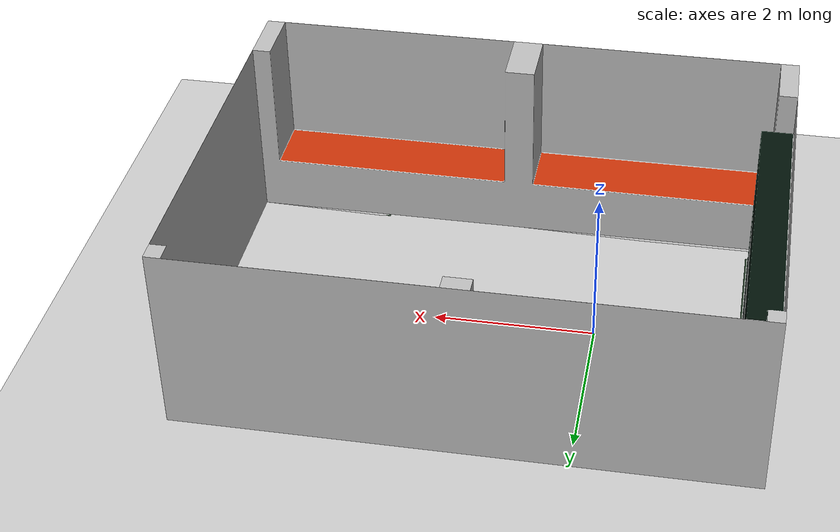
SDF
<sdf version="1.7">
 <world name="default">
  <light name="sun" type="directional">
   <pose>0 0 10 0 -0 0</pose>
   <diffuse>0.8 0.8 0.8 1</diffuse>
   <specular>0.2 0.2 0.2 1</specular>
   <attenuation>
    <range>1000</range>
    <constant>0.9</constant>
    <linear>0.01</linear>
    <quadratic>0.001</quadratic>
   </attenuation>
   <direction>-0.5 0.1 -0.9</direction>
   <spot><inner_angle>0</inner_angle><outer_angle>0</outer_angle><falloff>0</falloff></spot>
  </light>
  <model name="ground_plane">
   <static>1</static>
   <link name="link">
    <collision name="collision">
     <geometry><plane><normal>0 0 1</normal><size>100 100</size></plane></geometry>
     <surface><friction><ode><mu>100</mu><mu2>50</mu2></ode></friction></surface>
    </collision>
    <visual name="visual">
     <cast_shadows>0</cast_shadows>
     <geometry><plane><normal>0 0 1</normal><size>100 100</size></plane></geometry>
     <material>
      <script><uri>file://media/materials/scripts/gazebo.material</uri><name>Gazebo/Grey</name></script>
     </material>
    </visual>
   </link>
  </model>
  <gravity>0 0 -9.8</gravity>
  <magnetic_field>6e-06 2.3e-05 -4.2e-05</magnetic_field>
  <atmosphere type="adiabatic"/>
  <physics type="ode">
   <max_step_size>0.001</max_step_size>
   <real_time_factor>1</real_time_factor>
   <real_time_update_rate>1000</real_time_update_rate>
  </physics>
  <scene><ambient>0.4 0.4 0.4 1</ambient><background>0.7 0.7 0.7 1</background><shadows>1</shadows></scene>
  <spherical_coordinates>
   <surface_model>EARTH_WGS84</surface_model>
   <latitude_deg>0</latitude_deg>
   <longitude_deg>0</longitude_deg>
   <elevation>0</elevation>
   <heading_deg>0</heading_deg>
  </spherical_coordinates>
  <model name="RoboticLab">
   <link name="Lab">
    <visual name="visual">
     <geometry><mesh><uri>model://RoboticLab/files/RoboticPark.dae</uri><scale>1 1 1</scale></mesh></geometry>
    </visual>
    <collision name="collision">
     <geometry><mesh><uri>model://RoboticLab/files/RoboticPark.dae</uri><scale>1 1 1</scale></mesh></geometry>
    </collision>
   </link>
   <static>1</static>
  </model>
  <light name="user_spot_light_0" type="spot">
   <pose>-0.245283 0.05548 1 0 -0 0</pose>
   <diffuse>0.5 0.5 0.5 1</diffuse>
   <specular>0.1 0.1 0.1 1</specular>
   <direction>0 0 -1</direction>
   <attenuation>
    <range>20</range>
    <constant>0.5</constant>
    <linear>0.01</linear>
    <quadratic>0.001</quadratic>
   </attenuation>
   <cast_shadows>0</cast_shadows>
   <spot><inner_angle>0.6</inner_angle><outer_angle>1</outer_angle><falloff>1</falloff></spot>
  </light>
  <light name="user_spot_light_0_clone" type="spot">
   <pose>2.38002 0.19448 2.6 0 -0 0</pose>
   <diffuse>0.498039 0.498039 0.498039 1</diffuse>
   <specular>0.0980392 0.0980392 0.0980392 1</specular>
   <direction>0 0 -1</direction>
   <attenuation>
    <range>60</range>
    <constant>0</constant>
    <linear>0.05</linear>
    <quadratic>0.001</quadratic>
   </attenuation>
   <cast_shadows>0</cast_shadows>
   <spot><inner_angle>0.6</inner_angle><outer_angle>4</outer_angle><falloff>0</falloff></spot>
  </light>
 </world>
</sdf>
